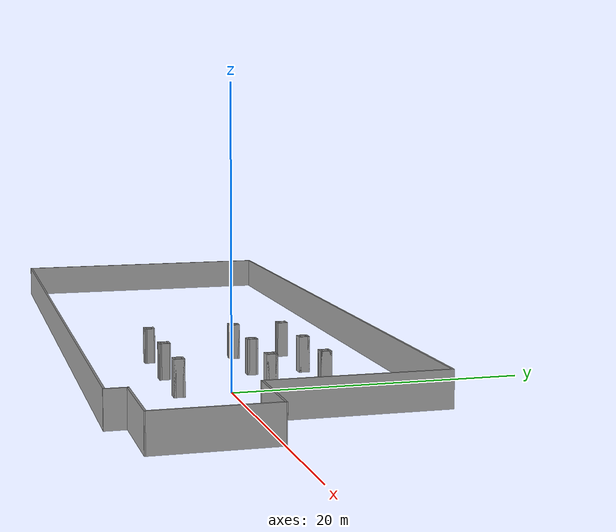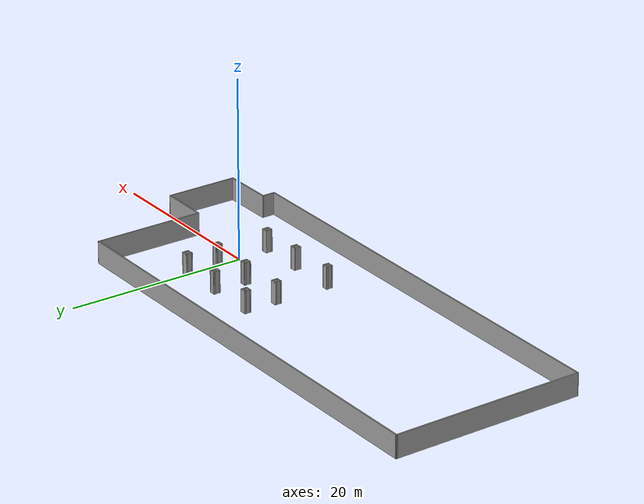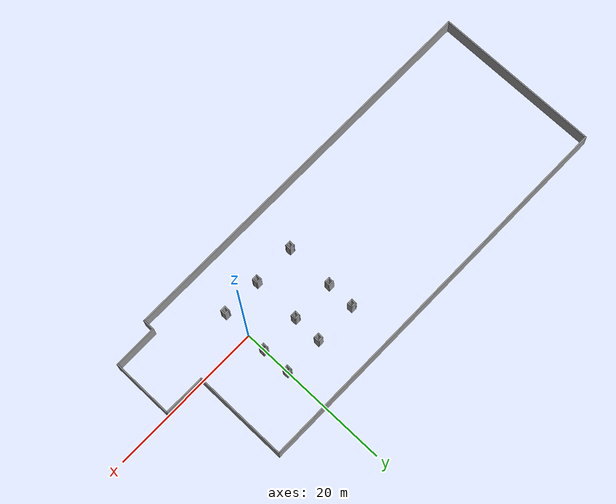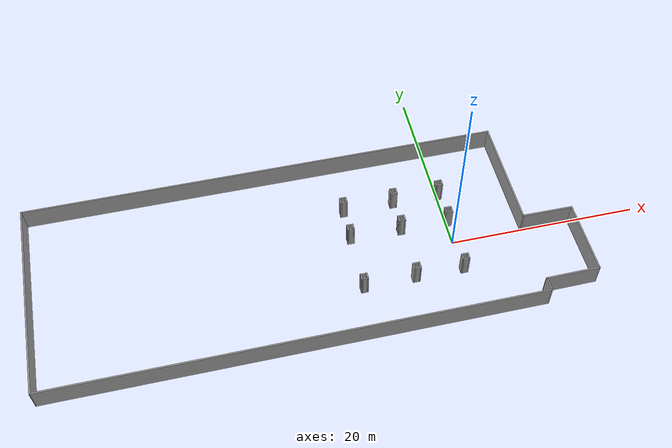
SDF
<?xml version='1.0'?>
<sdf version='1.6'>
  <model name='parking'>
    <pose frame=''>-15.428 1.46401 0 0 -0 0</pose>
    <link name='Wall_1'>
      <collision name='Wall_1_Collision'>
        <geometry>
          <box>
            <size>51.25 0.15 2.5</size>
          </box>
        </geometry>
        <pose frame=''>0 0 1.25 0 -0 0</pose>
      </collision>
      <visual name='Wall_1_Visual'>
        <pose frame=''>0 0 1.25 0 -0 0</pose>
        <geometry>
          <box>
            <size>51.25 0.15 2.5</size>
          </box>
        </geometry>
        <material>
          <script>
            <uri>file://media/materials/scripts/gazebo.material</uri>
            <name>Gazebo/Grey</name>
          </script>
          <ambient>1 1 1 1</ambient>
        </material>
        <meta>
          <layer>0</layer>
        </meta>
      </visual>
      <pose frame=''>-2.67486 10.7215 0 0 -0 3.14159</pose>
    </link>
    <link name='Wall_10'>
      <collision name='Wall_10_Collision'>
        <geometry>
          <box>
            <size>0.75 0.15 2.5</size>
          </box>
        </geometry>
        <pose frame=''>0 0 1.25 0 -0 0</pose>
      </collision>
      <visual name='Wall_10_Visual'>
        <pose frame=''>0 0 1.25 0 -0 0</pose>
        <geometry>
          <box>
            <size>0.75 0.15 2.5</size>
          </box>
        </geometry>
        <material>
          <script>
            <uri>file://media/materials/scripts/gazebo.material</uri>
            <name>Gazebo/Grey</name>
          </script>
          <ambient>1 1 1 1</ambient>
        </material>
        <meta>
          <layer>0</layer>
        </meta>
      </visual>
      <pose frame=''>10.4341 -4.67305 0 0 -0 0</pose>
    </link>
    <link name='Wall_11'>
      <collision name='Wall_11_Collision'>
        <geometry>
          <box>
            <size>0.754311 0.15 2.5</size>
          </box>
        </geometry>
        <pose frame=''>0 0 1.25 0 -0 0</pose>
      </collision>
      <visual name='Wall_11_Visual'>
        <pose frame=''>0 0 1.25 0 -0 0</pose>
        <geometry>
          <box>
            <size>0.754311 0.15 2.5</size>
          </box>
        </geometry>
        <material>
          <script>
            <uri>file://media/materials/scripts/gazebo.material</uri>
            <name>Gazebo/Grey</name>
          </script>
          <ambient>1 1 1 1</ambient>
        </material>
        <meta>
          <layer>0</layer>
        </meta>
      </visual>
      <pose frame=''>10.7407 -4.97514 0 0 0 -1.54891</pose>
    </link>
    <link name='Wall_12'>
      <collision name='Wall_12_Collision'>
        <geometry>
          <box>
            <size>0.75 0.15 2.5</size>
          </box>
        </geometry>
        <pose frame=''>0 0 1.25 0 -0 0</pose>
      </collision>
      <visual name='Wall_12_Visual'>
        <pose frame=''>0 0 1.25 0 -0 0</pose>
        <geometry>
          <box>
            <size>0.75 0.15 2.5</size>
          </box>
        </geometry>
        <material>
          <script>
            <uri>file://media/materials/scripts/gazebo.material</uri>
            <name>Gazebo/Grey</name>
          </script>
          <ambient>1 1 1 1</ambient>
        </material>
        <meta>
          <layer>0</layer>
        </meta>
      </visual>
      <pose frame=''>10.4474 -5.27722 0 0 -0 3.14159</pose>
    </link>
    <link name='Wall_13'>
      <collision name='Wall_13_Collision'>
        <geometry>
          <box>
            <size>0.754311 0.15 2.5</size>
          </box>
        </geometry>
        <pose frame=''>0 0 1.25 0 -0 0</pose>
      </collision>
      <visual name='Wall_13_Visual'>
        <pose frame=''>0 0 1.25 0 -0 0</pose>
        <geometry>
          <box>
            <size>0.754311 0.15 2.5</size>
          </box>
        </geometry>
        <material>
          <script>
            <uri>file://media/materials/scripts/gazebo.material</uri>
            <name>Gazebo/Grey</name>
          </script>
          <ambient>1 1 1 1</ambient>
        </material>
        <meta>
          <layer>0</layer>
        </meta>
      </visual>
      <pose frame=''>10.1298 -4.98604 0 0 -0 1.59268</pose>
    </link>
    <link name='Wall_15'>
      <collision name='Wall_15_Collision'>
        <geometry>
          <box>
            <size>0.75 0.15 2.5</size>
          </box>
        </geometry>
        <pose frame=''>0 0 1.25 0 -0 0</pose>
      </collision>
      <visual name='Wall_15_Visual'>
        <pose frame=''>0 0 1.25 0 -0 0</pose>
        <geometry>
          <box>
            <size>0.75 0.15 2.5</size>
          </box>
        </geometry>
        <material>
          <script>
            <uri>file://media/materials/scripts/gazebo.material</uri>
            <name>Gazebo/Grey</name>
          </script>
          <ambient>1 1 1 1</ambient>
        </material>
        <meta>
          <layer>0</layer>
        </meta>
      </visual>
      <pose frame=''>10.4415 1.4418 0 0 -0 0</pose>
    </link>
    <link name='Wall_16'>
      <collision name='Wall_16_Collision'>
        <geometry>
          <box>
            <size>0.75 0.15 2.5</size>
          </box>
        </geometry>
        <pose frame=''>0 0 1.25 0 -0 0</pose>
      </collision>
      <visual name='Wall_16_Visual'>
        <pose frame=''>0 0 1.25 0 -0 0</pose>
        <geometry>
          <box>
            <size>0.75 0.15 2.5</size>
          </box>
        </geometry>
        <material>
          <script>
            <uri>file://media/materials/scripts/gazebo.material</uri>
            <name>Gazebo/Grey</name>
          </script>
          <ambient>1 1 1 1</ambient>
        </material>
        <meta>
          <layer>0</layer>
        </meta>
      </visual>
      <pose frame=''>10.7415 1.1418 0 0 0 -1.5708</pose>
    </link>
    <link name='Wall_17'>
      <collision name='Wall_17_Collision'>
        <geometry>
          <box>
            <size>0.75 0.15 2.5</size>
          </box>
        </geometry>
        <pose frame=''>0 0 1.25 0 -0 0</pose>
      </collision>
      <visual name='Wall_17_Visual'>
        <pose frame=''>0 0 1.25 0 -0 0</pose>
        <geometry>
          <box>
            <size>0.75 0.15 2.5</size>
          </box>
        </geometry>
        <material>
          <script>
            <uri>file://media/materials/scripts/gazebo.material</uri>
            <name>Gazebo/Grey</name>
          </script>
          <ambient>1 1 1 1</ambient>
        </material>
        <meta>
          <layer>0</layer>
        </meta>
      </visual>
      <pose frame=''>10.4415 0.841804 0 0 -0 3.14159</pose>
    </link>
    <link name='Wall_18'>
      <collision name='Wall_18_Collision'>
        <geometry>
          <box>
            <size>0.15 0.15 2.5</size>
          </box>
        </geometry>
        <pose frame=''>0 0 1.25 0 -0 0</pose>
      </collision>
      <visual name='Wall_18_Visual'>
        <pose frame=''>0 0 1.25 0 -0 0</pose>
        <geometry>
          <box>
            <size>0.15 0.15 2.5</size>
          </box>
        </geometry>
        <material>
          <script>
            <uri>file://media/materials/scripts/gazebo.material</uri>
            <name>Gazebo/Grey</name>
          </script>
          <ambient>1 1 1 1</ambient>
        </material>
        <meta>
          <layer>0</layer>
        </meta>
      </visual>
      <pose frame=''>10.1415 0.841804 0 0 -0 0</pose>
    </link>
    <link name='Wall_2'>
      <collision name='Wall_2_Collision'>
        <geometry>
          <box>
            <size>21.5948 0.15 2.5</size>
          </box>
        </geometry>
        <pose frame=''>0 0 1.25 0 -0 0</pose>
      </collision>
      <visual name='Wall_2_Visual'>
        <pose frame=''>0 0 1.25 0 -0 0</pose>
        <geometry>
          <box>
            <size>21.5948 0.15 2.5</size>
          </box>
        </geometry>
        <material>
          <script>
            <uri>file://media/materials/scripts/gazebo.material</uri>
            <name>Gazebo/Grey</name>
          </script>
          <ambient>1 1 1 1</ambient>
        </material>
        <meta>
          <layer>0</layer>
        </meta>
      </visual>
      <pose frame=''>-28.0881 0 0 0 0 -1.55804</pose>
    </link>
    <link name='Wall_20'>
      <collision name='Wall_20_Collision'>
        <geometry>
          <box>
            <size>0.75 0.15 2.5</size>
          </box>
        </geometry>
        <pose frame=''>0 0 1.25 0 -0 0</pose>
      </collision>
      <visual name='Wall_20_Visual'>
        <pose frame=''>0 0 1.25 0 -0 0</pose>
        <geometry>
          <box>
            <size>0.75 0.15 2.5</size>
          </box>
        </geometry>
        <material>
          <script>
            <uri>file://media/materials/scripts/gazebo.material</uri>
            <name>Gazebo/Grey</name>
          </script>
          <ambient>1 1 1 1</ambient>
        </material>
        <meta>
          <layer>0</layer>
        </meta>
      </visual>
      <pose frame=''>10.1635 1.1418 0 0 -0 1.5708</pose>
    </link>
    <link name='Wall_22'>
      <collision name='Wall_22_Collision'>
        <geometry>
          <box>
            <size>0.75 0.15 2.5</size>
          </box>
        </geometry>
        <pose frame=''>0 0 1.25 0 -0 0</pose>
      </collision>
      <visual name='Wall_22_Visual'>
        <pose frame=''>0 0 1.25 0 -0 0</pose>
        <geometry>
          <box>
            <size>0.75 0.15 2.5</size>
          </box>
        </geometry>
        <material>
          <script>
            <uri>file://media/materials/scripts/gazebo.material</uri>
            <name>Gazebo/Grey</name>
          </script>
          <ambient>1 1 1 1</ambient>
        </material>
        <meta>
          <layer>0</layer>
        </meta>
      </visual>
      <pose frame=''>15.5559 1.42904 0 0 -0 0</pose>
    </link>
    <link name='Wall_23'>
      <collision name='Wall_23_Collision'>
        <geometry>
          <box>
            <size>0.75 0.15 2.5</size>
          </box>
        </geometry>
        <pose frame=''>0 0 1.25 0 -0 0</pose>
      </collision>
      <visual name='Wall_23_Visual'>
        <pose frame=''>0 0 1.25 0 -0 0</pose>
        <geometry>
          <box>
            <size>0.75 0.15 2.5</size>
          </box>
        </geometry>
        <material>
          <script>
            <uri>file://media/materials/scripts/gazebo.material</uri>
            <name>Gazebo/Grey</name>
          </script>
          <ambient>1 1 1 1</ambient>
        </material>
        <meta>
          <layer>0</layer>
        </meta>
      </visual>
      <pose frame=''>15.8559 1.12905 0 0 0 -1.5708</pose>
    </link>
    <link name='Wall_24'>
      <collision name='Wall_24_Collision'>
        <geometry>
          <box>
            <size>0.75 0.15 2.5</size>
          </box>
        </geometry>
        <pose frame=''>0 0 1.25 0 -0 0</pose>
      </collision>
      <visual name='Wall_24_Visual'>
        <pose frame=''>0 0 1.25 0 -0 0</pose>
        <geometry>
          <box>
            <size>0.75 0.15 2.5</size>
          </box>
        </geometry>
        <material>
          <script>
            <uri>file://media/materials/scripts/gazebo.material</uri>
            <name>Gazebo/Grey</name>
          </script>
          <ambient>1 1 1 1</ambient>
        </material>
        <meta>
          <layer>0</layer>
        </meta>
      </visual>
      <pose frame=''>15.5559 0.829045 0 0 -0 3.14159</pose>
    </link>
    <link name='Wall_25'>
      <collision name='Wall_25_Collision'>
        <geometry>
          <box>
            <size>0.75 0.15 2.5</size>
          </box>
        </geometry>
        <pose frame=''>0 0 1.25 0 -0 0</pose>
      </collision>
      <visual name='Wall_25_Visual'>
        <pose frame=''>0 0 1.25 0 -0 0</pose>
        <geometry>
          <box>
            <size>0.75 0.15 2.5</size>
          </box>
        </geometry>
        <material>
          <script>
            <uri>file://media/materials/scripts/gazebo.material</uri>
            <name>Gazebo/Grey</name>
          </script>
          <ambient>1 1 1 1</ambient>
        </material>
        <meta>
          <layer>0</layer>
        </meta>
      </visual>
      <pose frame=''>15.2682 1.14134 0 0 -0 1.5708</pose>
    </link>
    <link name='Wall_28'>
      <collision name='Wall_28_Collision'>
        <geometry>
          <box>
            <size>0.75 0.15 2.5</size>
          </box>
        </geometry>
        <pose frame=''>0 0 1.25 0 -0 0</pose>
      </collision>
      <visual name='Wall_28_Visual'>
        <pose frame=''>0 0 1.25 0 -0 0</pose>
        <geometry>
          <box>
            <size>0.75 0.15 2.5</size>
          </box>
        </geometry>
        <material>
          <script>
            <uri>file://media/materials/scripts/gazebo.material</uri>
            <name>Gazebo/Grey</name>
          </script>
          <ambient>1 1 1 1</ambient>
        </material>
        <meta>
          <layer>0</layer>
        </meta>
      </visual>
      <pose frame=''>15.5351 -4.68448 0 0 -0 0</pose>
    </link>
    <link name='Wall_29'>
      <collision name='Wall_29_Collision'>
        <geometry>
          <box>
            <size>0.75 0.15 2.5</size>
          </box>
        </geometry>
        <pose frame=''>0 0 1.25 0 -0 0</pose>
      </collision>
      <visual name='Wall_29_Visual'>
        <pose frame=''>0 0 1.25 0 -0 0</pose>
        <geometry>
          <box>
            <size>0.75 0.15 2.5</size>
          </box>
        </geometry>
        <material>
          <script>
            <uri>file://media/materials/scripts/gazebo.material</uri>
            <name>Gazebo/Grey</name>
          </script>
          <ambient>1 1 1 1</ambient>
        </material>
        <meta>
          <layer>0</layer>
        </meta>
      </visual>
      <pose frame=''>15.8351 -4.98448 0 0 0 -1.5708</pose>
    </link>
    <link name='Wall_3'>
      <collision name='Wall_3_Collision'>
        <geometry>
          <box>
            <size>50.75 0.15 2.5</size>
          </box>
        </geometry>
        <pose frame=''>0 0 1.25 0 -0 0</pose>
      </collision>
      <visual name='Wall_3_Visual'>
        <pose frame=''>0 0 1.25 0 -0 0</pose>
        <geometry>
          <box>
            <size>50.75 0.15 2.5</size>
          </box>
        </geometry>
        <material>
          <script>
            <uri>file://media/materials/scripts/gazebo.material</uri>
            <name>Gazebo/Grey</name>
          </script>
          <ambient>1 1 1 1</ambient>
        </material>
        <meta>
          <layer>0</layer>
        </meta>
      </visual>
      <pose frame=''>-2.65133 -10.7215 0 0 -0 0</pose>
    </link>
    <link name='Wall_30'>
      <collision name='Wall_30_Collision'>
        <geometry>
          <box>
            <size>0.75 0.15 2.5</size>
          </box>
        </geometry>
        <pose frame=''>0 0 1.25 0 -0 0</pose>
      </collision>
      <visual name='Wall_30_Visual'>
        <pose frame=''>0 0 1.25 0 -0 0</pose>
        <geometry>
          <box>
            <size>0.75 0.15 2.5</size>
          </box>
        </geometry>
        <material>
          <script>
            <uri>file://media/materials/scripts/gazebo.material</uri>
            <name>Gazebo/Grey</name>
          </script>
          <ambient>1 1 1 1</ambient>
        </material>
        <meta>
          <layer>0</layer>
        </meta>
      </visual>
      <pose frame=''>15.5351 -5.28448 0 0 -0 3.14159</pose>
    </link>
    <link name='Wall_31'>
      <collision name='Wall_31_Collision'>
        <geometry>
          <box>
            <size>0.75 0.15 2.5</size>
          </box>
        </geometry>
        <pose frame=''>0 0 1.25 0 -0 0</pose>
      </collision>
      <visual name='Wall_31_Visual'>
        <pose frame=''>0 0 1.25 0 -0 0</pose>
        <geometry>
          <box>
            <size>0.75 0.15 2.5</size>
          </box>
        </geometry>
        <material>
          <script>
            <uri>file://media/materials/scripts/gazebo.material</uri>
            <name>Gazebo/Grey</name>
          </script>
          <ambient>1 1 1 1</ambient>
        </material>
        <meta>
          <layer>0</layer>
        </meta>
      </visual>
      <pose frame=''>15.2351 -4.98448 0 0 -0 1.5708</pose>
    </link>
    <link name='Wall_33'>
      <collision name='Wall_33_Collision'>
        <geometry>
          <box>
            <size>0.75 0.15 2.5</size>
          </box>
        </geometry>
        <pose frame=''>0 0 1.25 0 -0 0</pose>
      </collision>
      <visual name='Wall_33_Visual'>
        <pose frame=''>0 0 1.25 0 -0 0</pose>
        <geometry>
          <box>
            <size>0.75 0.15 2.5</size>
          </box>
        </geometry>
        <material>
          <script>
            <uri>file://media/materials/scripts/gazebo.material</uri>
            <name>Gazebo/Grey</name>
          </script>
          <ambient>1 1 1 1</ambient>
        </material>
        <meta>
          <layer>0</layer>
        </meta>
      </visual>
      <pose frame=''>10.4947 5.11029 0 0 -0 0</pose>
    </link>
    <link name='Wall_34'>
      <collision name='Wall_34_Collision'>
        <geometry>
          <box>
            <size>0.75 0.15 2.5</size>
          </box>
        </geometry>
        <pose frame=''>0 0 1.25 0 -0 0</pose>
      </collision>
      <visual name='Wall_34_Visual'>
        <pose frame=''>0 0 1.25 0 -0 0</pose>
        <geometry>
          <box>
            <size>0.75 0.15 2.5</size>
          </box>
        </geometry>
        <material>
          <script>
            <uri>file://media/materials/scripts/gazebo.material</uri>
            <name>Gazebo/Grey</name>
          </script>
          <ambient>1 1 1 1</ambient>
        </material>
        <meta>
          <layer>0</layer>
        </meta>
      </visual>
      <pose frame=''>10.7947 4.81029 0 0 0 -1.5708</pose>
    </link>
    <link name='Wall_35'>
      <collision name='Wall_35_Collision'>
        <geometry>
          <box>
            <size>0.75 0.15 2.5</size>
          </box>
        </geometry>
        <pose frame=''>0 0 1.25 0 -0 0</pose>
      </collision>
      <visual name='Wall_35_Visual'>
        <pose frame=''>0 0 1.25 0 -0 0</pose>
        <geometry>
          <box>
            <size>0.75 0.15 2.5</size>
          </box>
        </geometry>
        <material>
          <script>
            <uri>file://media/materials/scripts/gazebo.material</uri>
            <name>Gazebo/Grey</name>
          </script>
          <ambient>1 1 1 1</ambient>
        </material>
        <meta>
          <layer>0</layer>
        </meta>
      </visual>
      <pose frame=''>10.4947 4.51029 0 0 -0 3.14159</pose>
    </link>
    <link name='Wall_36'>
      <collision name='Wall_36_Collision'>
        <geometry>
          <box>
            <size>0.75 0.15 2.5</size>
          </box>
        </geometry>
        <pose frame=''>0 0 1.25 0 -0 0</pose>
      </collision>
      <visual name='Wall_36_Visual'>
        <pose frame=''>0 0 1.25 0 -0 0</pose>
        <geometry>
          <box>
            <size>0.75 0.15 2.5</size>
          </box>
        </geometry>
        <material>
          <script>
            <uri>file://media/materials/scripts/gazebo.material</uri>
            <name>Gazebo/Grey</name>
          </script>
          <ambient>1 1 1 1</ambient>
        </material>
        <meta>
          <layer>0</layer>
        </meta>
      </visual>
      <pose frame=''>10.1947 4.81029 0 0 -0 1.5708</pose>
    </link>
    <link name='Wall_38'>
      <collision name='Wall_38_Collision'>
        <geometry>
          <box>
            <size>0.75 0.15 2.5</size>
          </box>
        </geometry>
        <pose frame=''>0 0 1.25 0 -0 0</pose>
      </collision>
      <visual name='Wall_38_Visual'>
        <pose frame=''>0 0 1.25 0 -0 0</pose>
        <geometry>
          <box>
            <size>0.75 0.15 2.5</size>
          </box>
        </geometry>
        <material>
          <script>
            <uri>file://media/materials/scripts/gazebo.material</uri>
            <name>Gazebo/Grey</name>
          </script>
          <ambient>1 1 1 1</ambient>
        </material>
        <meta>
          <layer>0</layer>
        </meta>
      </visual>
      <pose frame=''>5.03765 5.08597 0 0 -0 0</pose>
    </link>
    <link name='Wall_39'>
      <collision name='Wall_39_Collision'>
        <geometry>
          <box>
            <size>0.75 0.15 2.5</size>
          </box>
        </geometry>
        <pose frame=''>0 0 1.25 0 -0 0</pose>
      </collision>
      <visual name='Wall_39_Visual'>
        <pose frame=''>0 0 1.25 0 -0 0</pose>
        <geometry>
          <box>
            <size>0.75 0.15 2.5</size>
          </box>
        </geometry>
        <material>
          <script>
            <uri>file://media/materials/scripts/gazebo.material</uri>
            <name>Gazebo/Grey</name>
          </script>
          <ambient>1 1 1 1</ambient>
        </material>
        <meta>
          <layer>0</layer>
        </meta>
      </visual>
      <pose frame=''>5.33765 4.78597 0 0 0 -1.5708</pose>
    </link>
    <link name='Wall_4'>
      <collision name='Wall_4_Collision'>
        <geometry>
          <box>
            <size>1.5 0.15 2.5</size>
          </box>
        </geometry>
        <pose frame=''>0 0 1.25 0 -0 0</pose>
      </collision>
      <visual name='Wall_4_Visual'>
        <pose frame=''>0 0 1.25 0 -0 0</pose>
        <geometry>
          <box>
            <size>1.5 0.15 2.5</size>
          </box>
        </geometry>
        <material>
          <script>
            <uri>file://media/materials/scripts/gazebo.material</uri>
            <name>Gazebo/Grey</name>
          </script>
          <ambient>1 1 1 1</ambient>
        </material>
        <meta>
          <layer>0</layer>
        </meta>
      </visual>
      <pose frame=''>22.6487 -10.0465 0 0 -0 1.5708</pose>
    </link>
    <link name='Wall_40'>
      <collision name='Wall_40_Collision'>
        <geometry>
          <box>
            <size>0.75 0.15 2.5</size>
          </box>
        </geometry>
        <pose frame=''>0 0 1.25 0 -0 0</pose>
      </collision>
      <visual name='Wall_40_Visual'>
        <pose frame=''>0 0 1.25 0 -0 0</pose>
        <geometry>
          <box>
            <size>0.75 0.15 2.5</size>
          </box>
        </geometry>
        <material>
          <script>
            <uri>file://media/materials/scripts/gazebo.material</uri>
            <name>Gazebo/Grey</name>
          </script>
          <ambient>1 1 1 1</ambient>
        </material>
        <meta>
          <layer>0</layer>
        </meta>
      </visual>
      <pose frame=''>5.01754 4.50608 0 0 -0 3.14159</pose>
    </link>
    <link name='Wall_41'>
      <collision name='Wall_41_Collision'>
        <geometry>
          <box>
            <size>0.75 0.15 2.5</size>
          </box>
        </geometry>
        <pose frame=''>0 0 1.25 0 -0 0</pose>
      </collision>
      <visual name='Wall_41_Visual'>
        <pose frame=''>0 0 1.25 0 -0 0</pose>
        <geometry>
          <box>
            <size>0.75 0.15 2.5</size>
          </box>
        </geometry>
        <material>
          <script>
            <uri>file://media/materials/scripts/gazebo.material</uri>
            <name>Gazebo/Grey</name>
          </script>
          <ambient>1 1 1 1</ambient>
        </material>
        <meta>
          <layer>0</layer>
        </meta>
      </visual>
      <pose frame=''>4.73765 4.78597 0 0 -0 1.5708</pose>
    </link>
    <link name='Wall_43'>
      <collision name='Wall_43_Collision'>
        <geometry>
          <box>
            <size>0.75 0.15 2.5</size>
          </box>
        </geometry>
        <pose frame=''>0 0 1.25 0 -0 0</pose>
      </collision>
      <visual name='Wall_43_Visual'>
        <pose frame=''>0 0 1.25 0 -0 0</pose>
        <geometry>
          <box>
            <size>0.75 0.15 2.5</size>
          </box>
        </geometry>
        <material>
          <script>
            <uri>file://media/materials/scripts/gazebo.material</uri>
            <name>Gazebo/Grey</name>
          </script>
          <ambient>1 1 1 1</ambient>
        </material>
        <meta>
          <layer>0</layer>
        </meta>
      </visual>
      <pose frame=''>15.5235 5.11483 0 0 -0 0</pose>
    </link>
    <link name='Wall_44'>
      <collision name='Wall_44_Collision'>
        <geometry>
          <box>
            <size>0.75 0.15 2.5</size>
          </box>
        </geometry>
        <pose frame=''>0 0 1.25 0 -0 0</pose>
      </collision>
      <visual name='Wall_44_Visual'>
        <pose frame=''>0 0 1.25 0 -0 0</pose>
        <geometry>
          <box>
            <size>0.75 0.15 2.5</size>
          </box>
        </geometry>
        <material>
          <script>
            <uri>file://media/materials/scripts/gazebo.material</uri>
            <name>Gazebo/Grey</name>
          </script>
          <ambient>1 1 1 1</ambient>
        </material>
        <meta>
          <layer>0</layer>
        </meta>
      </visual>
      <pose frame=''>15.8235 4.81483 0 0 0 -1.5708</pose>
    </link>
    <link name='Wall_45'>
      <collision name='Wall_45_Collision'>
        <geometry>
          <box>
            <size>0.75 0.15 2.5</size>
          </box>
        </geometry>
        <pose frame=''>0 0 1.25 0 -0 0</pose>
      </collision>
      <visual name='Wall_45_Visual'>
        <pose frame=''>0 0 1.25 0 -0 0</pose>
        <geometry>
          <box>
            <size>0.75 0.15 2.5</size>
          </box>
        </geometry>
        <material>
          <script>
            <uri>file://media/materials/scripts/gazebo.material</uri>
            <name>Gazebo/Grey</name>
          </script>
          <ambient>1 1 1 1</ambient>
        </material>
        <meta>
          <layer>0</layer>
        </meta>
      </visual>
      <pose frame=''>15.5235 4.53495 0 0 -0 3.14159</pose>
    </link>
    <link name='Wall_46'>
      <collision name='Wall_46_Collision'>
        <geometry>
          <box>
            <size>0.75 0.15 2.5</size>
          </box>
        </geometry>
        <pose frame=''>0 0 1.25 0 -0 0</pose>
      </collision>
      <visual name='Wall_46_Visual'>
        <pose frame=''>0 0 1.25 0 -0 0</pose>
        <geometry>
          <box>
            <size>0.75 0.15 2.5</size>
          </box>
        </geometry>
        <material>
          <script>
            <uri>file://media/materials/scripts/gazebo.material</uri>
            <name>Gazebo/Grey</name>
          </script>
          <ambient>1 1 1 1</ambient>
        </material>
        <meta>
          <layer>0</layer>
        </meta>
      </visual>
      <pose frame=''>15.2235 4.81483 0 0 -0 1.5708</pose>
    </link>
    <link name='Wall_48'>
      <collision name='Wall_48_Collision'>
        <geometry>
          <box>
            <size>0.75 0.15 2.5</size>
          </box>
        </geometry>
        <pose frame=''>0 0 1.25 0 -0 0</pose>
      </collision>
      <visual name='Wall_48_Visual'>
        <pose frame=''>0 0 1.25 0 -0 0</pose>
        <geometry>
          <box>
            <size>0.75 0.15 2.5</size>
          </box>
        </geometry>
        <material>
          <script>
            <uri>file://media/materials/scripts/gazebo.material</uri>
            <name>Gazebo/Grey</name>
          </script>
          <ambient>1 1 1 1</ambient>
        </material>
        <meta>
          <layer>0</layer>
        </meta>
      </visual>
      <pose frame=''>4.96649 1.47183 0 0 -0 0</pose>
    </link>
    <link name='Wall_49'>
      <collision name='Wall_49_Collision'>
        <geometry>
          <box>
            <size>0.75 0.15 2.5</size>
          </box>
        </geometry>
        <pose frame=''>0 0 1.25 0 -0 0</pose>
      </collision>
      <visual name='Wall_49_Visual'>
        <pose frame=''>0 0 1.25 0 -0 0</pose>
        <geometry>
          <box>
            <size>0.75 0.15 2.5</size>
          </box>
        </geometry>
        <material>
          <script>
            <uri>file://media/materials/scripts/gazebo.material</uri>
            <name>Gazebo/Grey</name>
          </script>
          <ambient>1 1 1 1</ambient>
        </material>
        <meta>
          <layer>0</layer>
        </meta>
      </visual>
      <pose frame=''>5.26649 1.17183 0 0 0 -1.5708</pose>
    </link>
    <link name='Wall_5'>
      <collision name='Wall_5_Collision'>
        <geometry>
          <box>
            <size>5.72667 0.15 2.5</size>
          </box>
        </geometry>
        <pose frame=''>0 0 1.25 0 -0 0</pose>
      </collision>
      <visual name='Wall_5_Visual'>
        <pose frame=''>0 0 1.25 0 -0 0</pose>
        <geometry>
          <box>
            <size>5.72667 0.15 2.5</size>
          </box>
        </geometry>
        <material>
          <script>
            <uri>file://media/materials/scripts/gazebo.material</uri>
            <name>Gazebo/Grey</name>
          </script>
          <ambient>1 1 1 1</ambient>
        </material>
        <meta>
          <layer>0</layer>
        </meta>
      </visual>
      <pose frame=''>25.4369 -9.30174 0 0 -0 0.008343</pose>
    </link>
    <link name='Wall_50'>
      <collision name='Wall_50_Collision'>
        <geometry>
          <box>
            <size>0.75 0.15 2.5</size>
          </box>
        </geometry>
        <pose frame=''>0 0 1.25 0 -0 0</pose>
      </collision>
      <visual name='Wall_50_Visual'>
        <pose frame=''>0 0 1.25 0 -0 0</pose>
        <geometry>
          <box>
            <size>0.75 0.15 2.5</size>
          </box>
        </geometry>
        <material>
          <script>
            <uri>file://media/materials/scripts/gazebo.material</uri>
            <name>Gazebo/Grey</name>
          </script>
          <ambient>1 1 1 1</ambient>
        </material>
        <meta>
          <layer>0</layer>
        </meta>
      </visual>
      <pose frame=''>4.96649 0.871831 0 0 -0 3.14159</pose>
    </link>
    <link name='Wall_51'>
      <collision name='Wall_51_Collision'>
        <geometry>
          <box>
            <size>0.75 0.15 2.5</size>
          </box>
        </geometry>
        <pose frame=''>0 0 1.25 0 -0 0</pose>
      </collision>
      <visual name='Wall_51_Visual'>
        <pose frame=''>0 0 1.25 0 -0 0</pose>
        <geometry>
          <box>
            <size>0.75 0.15 2.5</size>
          </box>
        </geometry>
        <material>
          <script>
            <uri>file://media/materials/scripts/gazebo.material</uri>
            <name>Gazebo/Grey</name>
          </script>
          <ambient>1 1 1 1</ambient>
        </material>
        <meta>
          <layer>0</layer>
        </meta>
      </visual>
      <pose frame=''>4.70127 1.17183 0 0 -0 1.5708</pose>
    </link>
    <link name='Wall_53'>
      <collision name='Wall_53_Collision'>
        <geometry>
          <box>
            <size>0.75 0.15 2.5</size>
          </box>
        </geometry>
        <pose frame=''>0 0 1.25 0 -0 0</pose>
      </collision>
      <visual name='Wall_53_Visual'>
        <pose frame=''>0 0 1.25 0 -0 0</pose>
        <geometry>
          <box>
            <size>0.75 0.15 2.5</size>
          </box>
        </geometry>
        <material>
          <script>
            <uri>file://media/materials/scripts/gazebo.material</uri>
            <name>Gazebo/Grey</name>
          </script>
          <ambient>1 1 1 1</ambient>
        </material>
        <meta>
          <layer>0</layer>
        </meta>
      </visual>
      <pose frame=''>4.95742 -4.77758 0 0 -0 0</pose>
    </link>
    <link name='Wall_54'>
      <collision name='Wall_54_Collision'>
        <geometry>
          <box>
            <size>0.720474 0.15 2.5</size>
          </box>
        </geometry>
        <pose frame=''>0 0 1.25 0 -0 0</pose>
      </collision>
      <visual name='Wall_54_Visual'>
        <pose frame=''>0 0 1.25 0 -0 0</pose>
        <geometry>
          <box>
            <size>0.720474 0.15 2.5</size>
          </box>
        </geometry>
        <material>
          <script>
            <uri>file://media/materials/scripts/gazebo.material</uri>
            <name>Gazebo/Grey</name>
          </script>
          <ambient>1 1 1 1</ambient>
        </material>
        <meta>
          <layer>0</layer>
        </meta>
      </visual>
      <pose frame=''>5.2615 -5.06279 0 0 0 -1.55649</pose>
    </link>
    <link name='Wall_55'>
      <collision name='Wall_55_Collision'>
        <geometry>
          <box>
            <size>0.75 0.15 2.5</size>
          </box>
        </geometry>
        <pose frame=''>0 0 1.25 0 -0 0</pose>
      </collision>
      <visual name='Wall_55_Visual'>
        <pose frame=''>0 0 1.25 0 -0 0</pose>
        <geometry>
          <box>
            <size>0.75 0.15 2.5</size>
          </box>
        </geometry>
        <material>
          <script>
            <uri>file://media/materials/scripts/gazebo.material</uri>
            <name>Gazebo/Grey</name>
          </script>
          <ambient>1 1 1 1</ambient>
        </material>
        <meta>
          <layer>0</layer>
        </meta>
      </visual>
      <pose frame=''>4.96558 -5.34799 0 0 -0 3.14159</pose>
    </link>
    <link name='Wall_56'>
      <collision name='Wall_56_Collision'>
        <geometry>
          <box>
            <size>0.720544 0.15 2.5</size>
          </box>
        </geometry>
        <pose frame=''>0 0 1.25 0 -0 0</pose>
      </collision>
      <visual name='Wall_56_Visual'>
        <pose frame=''>0 0 1.25 0 -0 0</pose>
        <geometry>
          <box>
            <size>0.720544 0.15 2.5</size>
          </box>
        </geometry>
        <material>
          <script>
            <uri>file://media/materials/scripts/gazebo.material</uri>
            <name>Gazebo/Grey</name>
          </script>
          <ambient>1 1 1 1</ambient>
        </material>
        <meta>
          <layer>0</layer>
        </meta>
      </visual>
      <pose frame=''>4.68145 -5.06279 0 0 -0 1.54962</pose>
    </link>
    <link name='Wall_6'>
      <collision name='Wall_6_Collision'>
        <geometry>
          <box>
            <size>8 0.15 2.5</size>
          </box>
        </geometry>
        <pose frame=''>0 0 1.25 0 -0 0</pose>
      </collision>
      <visual name='Wall_6_Visual'>
        <pose frame=''>0 0 1.25 0 -0 0</pose>
        <geometry>
          <box>
            <size>8 0.15 2.5</size>
          </box>
        </geometry>
        <material>
          <script>
            <uri>file://media/materials/scripts/gazebo.material</uri>
            <name>Gazebo/Grey</name>
          </script>
          <ambient>1 1 1 1</ambient>
        </material>
        <meta>
          <layer>0</layer>
        </meta>
      </visual>
      <pose frame=''>28.2251 -5.35348 0 0 -0 1.5708</pose>
    </link>
    <link name='Wall_7'>
      <collision name='Wall_7_Collision'>
        <geometry>
          <box>
            <size>5.37802 0.15 2.5</size>
          </box>
        </geometry>
        <pose frame=''>0 0 1.25 0 -0 0</pose>
      </collision>
      <visual name='Wall_7_Visual'>
        <pose frame=''>0 0 1.25 0 -0 0</pose>
        <geometry>
          <box>
            <size>5.37802 0.15 2.5</size>
          </box>
        </geometry>
        <material>
          <script>
            <uri>file://media/materials/scripts/gazebo.material</uri>
            <name>Gazebo/Grey</name>
          </script>
          <ambient>1 1 1 1</ambient>
        </material>
        <meta>
          <layer>0</layer>
        </meta>
      </visual>
      <pose frame=''>25.6112 -1.40521 0 0 -0 3.13269</pose>
    </link>
    <link name='Wall_8'>
      <collision name='Wall_8_Collision'>
        <geometry>
          <box>
            <size>12.25 0.15 2.5</size>
          </box>
        </geometry>
        <pose frame=''>0 0 1.25 0 -0 0</pose>
      </collision>
      <visual name='Wall_8_Visual'>
        <pose frame=''>0 0 1.25 0 -0 0</pose>
        <geometry>
          <box>
            <size>12.25 0.15 2.5</size>
          </box>
        </geometry>
        <material>
          <script>
            <uri>file://media/materials/scripts/gazebo.material</uri>
            <name>Gazebo/Grey</name>
          </script>
          <ambient>1 1 1 1</ambient>
        </material>
        <meta>
          <layer>0</layer>
        </meta>
      </visual>
      <pose frame=''>22.9043 4.66805 0 0 -0 1.5708</pose>
    </link>
    <static>1</static>
  </model>
</sdf>
